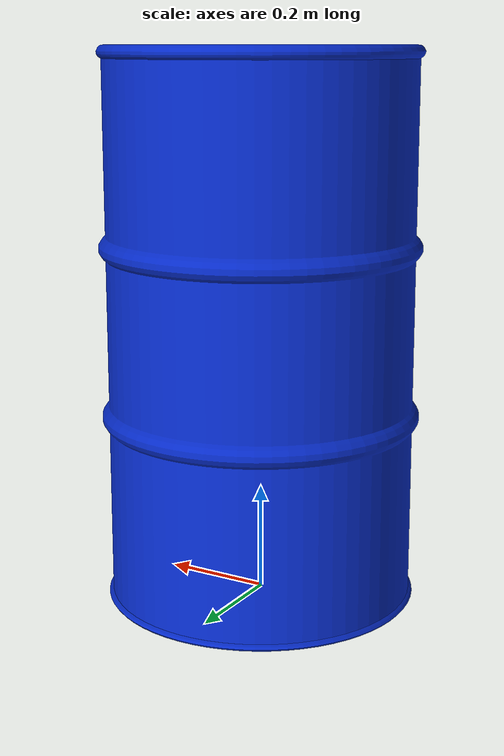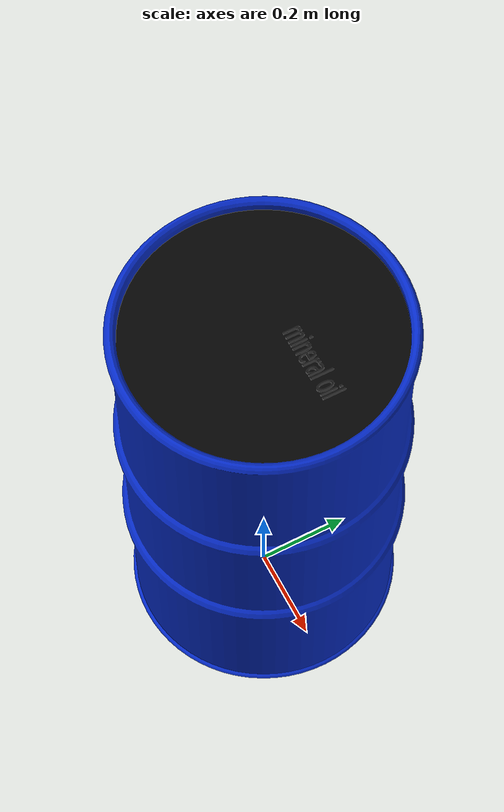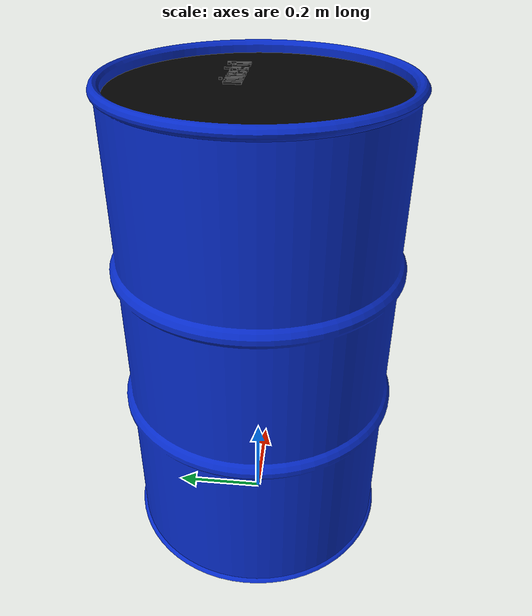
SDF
<?xml version="1.0"?>
<sdf version="1.4">
  <model name="barrel2">
    <static>true</static>
    <link name="link">
      <collision name="collision">
        <geometry>
          <mesh>
             <uri>model://barrel2/models/model.dae</uri>

          </mesh>
        </geometry>
      </collision>
      <visual name="visual">
         <geometry>
          <mesh>
		<uri>model://barrel2/models/model.dae</uri>

          </mesh>
        </geometry>
      </visual>
    </link>
  </model>
</sdf>
